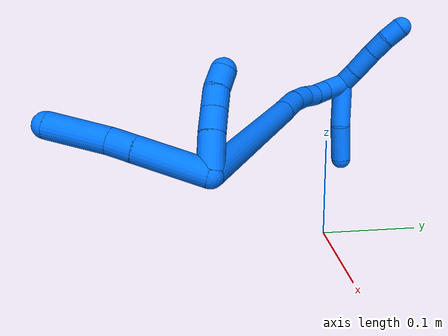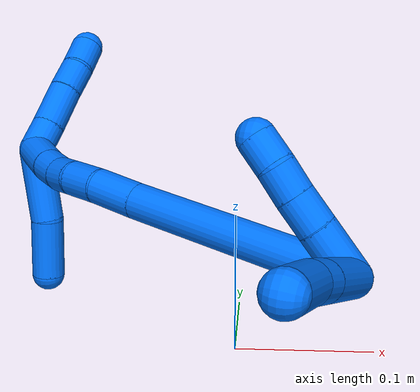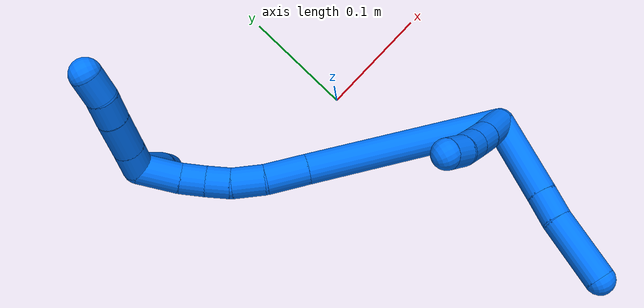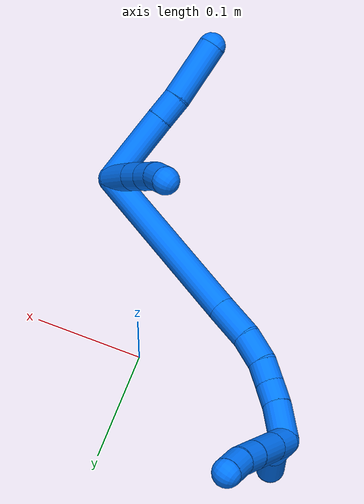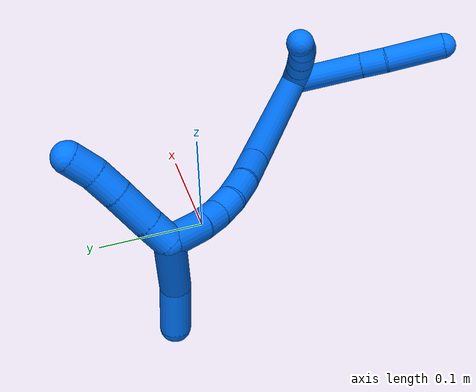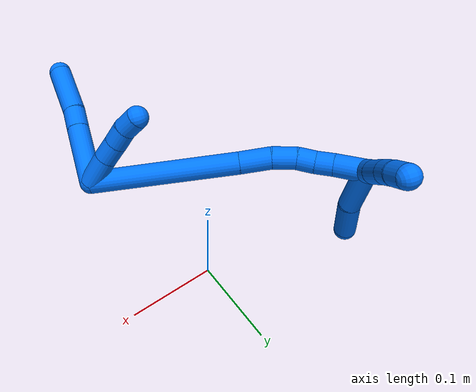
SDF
<sdf version="1.7">
 <world name="default">
  <model name="14">
   <static>0</static>
   <link name="14">
    <collision name="collision-cylinder-e_1_2_8">
     <pose>0.024197 0.024346 0.00153 -1.50804 0.781349 -0.738107</pose>
     <geometry><cylinder><radius>0.0125</radius><length>0.068718</length></cylinder></geometry>
     <surface>
      <friction><ode><mu>1.16</mu><mu2>1.16</mu2><slip1>0</slip1><slip2>0</slip2></ode></friction>
      <contact><ode><kp>1e+06</kp><kd>1</kd><max_vel>0</max_vel><min_depth>0.001</min_depth></ode></contact>
     </surface>
    </collision>
    <visual name="visual-cylinder-e_1_2_8">
     <pose>0.024197 0.024346 0.00153 -1.50804 0.781349 -0.738107</pose>
     <geometry><cylinder><radius>0.0125</radius><length>0.068718</length></cylinder></geometry>
     <material><ambient>0 0.462745 1 1</ambient></material>
    </visual>
    <collision name="collision-cylinder-e_2_8_9">
     <pose>0.056948 0.057179 0.003755 -1.48903 0.787583 -0.731251</pose>
     <geometry><cylinder><radius>0.0125</radius><length>0.024142</length></cylinder></geometry>
     <surface>
      <friction><ode><mu>1.16</mu><mu2>1.16</mu2><slip1>0</slip1><slip2>0</slip2></ode></friction>
      <contact><ode><kp>1e+06</kp><kd>1</kd><max_vel>0</max_vel><min_depth>0.001</min_depth></ode></contact>
     </surface>
    </collision>
    <visual name="visual-cylinder-e_2_8_9">
     <pose>0.056948 0.057179 0.003755 -1.48903 0.787583 -0.731251</pose>
     <geometry><cylinder><radius>0.0125</radius><length>0.024142</length></cylinder></geometry>
     <material><ambient>0 0.462745 1 1</ambient></material>
    </visual>
    <collision name="collision-cylinder-e_3_9_6">
     <pose>0.086258 0.085244 0.002968 -1.64639 0.813232 -0.869632</pose>
     <geometry><cylinder><radius>0.0125</radius><length>0.05714</length></cylinder></geometry>
     <surface>
      <friction><ode><mu>1.16</mu><mu2>1.16</mu2><slip1>0</slip1><slip2>0</slip2></ode></friction>
      <contact><ode><kp>1e+06</kp><kd>1</kd><max_vel>0</max_vel><min_depth>0.001</min_depth></ode></contact>
     </surface>
    </collision>
    <visual name="visual-cylinder-e_3_9_6">
     <pose>0.086258 0.085244 0.002968 -1.64639 0.813232 -0.869632</pose>
     <geometry><cylinder><radius>0.0125</radius><length>0.05714</length></cylinder></geometry>
     <material><ambient>0 0.462745 1 1</ambient></material>
    </visual>
    <collision name="collision-cylinder-e_1_2_10">
     <pose>-0.005134 0.012626 0.01193 -0.813745 -0.2874 0.124544</pose>
     <geometry><cylinder><radius>0.0125</radius><length>0.036227</length></cylinder></geometry>
     <surface>
      <friction><ode><mu>1.16</mu><mu2>1.16</mu2><slip1>0</slip1><slip2>0</slip2></ode></friction>
      <contact><ode><kp>1e+06</kp><kd>1</kd><max_vel>0</max_vel><min_depth>0.001</min_depth></ode></contact>
     </surface>
    </collision>
    <visual name="visual-cylinder-e_1_2_10">
     <pose>-0.005134 0.012626 0.01193 -0.813745 -0.2874 0.124544</pose>
     <geometry><cylinder><radius>0.0125</radius><length>0.036227</length></cylinder></geometry>
     <material><ambient>0 0.462745 1 1</ambient></material>
    </visual>
    <collision name="collision-cylinder-e_2_10_11">
     <pose>-0.013981 0.032678 0.031513 -0.770275 -0.334985 0.136867</pose>
     <geometry><cylinder><radius>0.0125</radius><length>0.022584</length></cylinder></geometry>
     <surface>
      <friction><ode><mu>1.16</mu><mu2>1.16</mu2><slip1>0</slip1><slip2>0</slip2></ode></friction>
      <contact><ode><kp>1e+06</kp><kd>1</kd><max_vel>0</max_vel><min_depth>0.001</min_depth></ode></contact>
     </surface>
    </collision>
    <visual name="visual-cylinder-e_2_10_11">
     <pose>-0.013981 0.032678 0.031513 -0.770275 -0.334985 0.136867</pose>
     <geometry><cylinder><radius>0.0125</radius><length>0.022584</length></cylinder></geometry>
     <material><ambient>0 0.462745 1 1</ambient></material>
    </visual>
    <collision name="collision-cylinder-e_3_11_12">
     <pose>-0.021449 0.04707 0.045807 -0.809416 -0.372066 0.160892</pose>
     <geometry><cylinder><radius>0.0125</radius><length>0.020662</length></cylinder></geometry>
     <surface>
      <friction><ode><mu>1.16</mu><mu2>1.16</mu2><slip1>0</slip1><slip2>0</slip2></ode></friction>
      <contact><ode><kp>1e+06</kp><kd>1</kd><max_vel>0</max_vel><min_depth>0.001</min_depth></ode></contact>
     </surface>
    </collision>
    <visual name="visual-cylinder-e_3_11_12">
     <pose>-0.021449 0.04707 0.045807 -0.809416 -0.372066 0.160892</pose>
     <geometry><cylinder><radius>0.0125</radius><length>0.020662</length></cylinder></geometry>
     <material><ambient>0 0.462745 1 1</ambient></material>
    </visual>
    <collision name="collision-cylinder-e_4_12_5">
     <pose>-0.030131 0.059224 0.059807 -0.61393 -0.500643 0.161742</pose>
     <geometry><cylinder><radius>0.0125</radius><length>0.020527</length></cylinder></geometry>
     <surface>
      <friction><ode><mu>1.16</mu><mu2>1.16</mu2><slip1>0</slip1><slip2>0</slip2></ode></friction>
      <contact><ode><kp>1e+06</kp><kd>1</kd><max_vel>0</max_vel><min_depth>0.001</min_depth></ode></contact>
     </surface>
    </collision>
    <visual name="visual-cylinder-e_4_12_5">
     <pose>-0.030131 0.059224 0.059807 -0.61393 -0.500643 0.161742</pose>
     <geometry><cylinder><radius>0.0125</radius><length>0.020527</length></cylinder></geometry>
     <material><ambient>0 0.462745 1 1</ambient></material>
    </visual>
    <collision name="collision-cylinder-e_1_2_13">
     <pose>-0.019819 -0.007464 0.079427 0.093703 -0.243506 -0.011474</pose>
     <geometry><cylinder><radius>0.0125</radius><length>0.164404</length></cylinder></geometry>
     <surface>
      <friction><ode><mu>1.16</mu><mu2>1.16</mu2><slip1>0</slip1><slip2>0</slip2></ode></friction>
      <contact><ode><kp>1e+06</kp><kd>1</kd><max_vel>0</max_vel><min_depth>0.001</min_depth></ode></contact>
     </surface>
    </collision>
    <visual name="visual-cylinder-e_1_2_13">
     <pose>-0.019819 -0.007464 0.079427 0.093703 -0.243506 -0.011474</pose>
     <geometry><cylinder><radius>0.0125</radius><length>0.164404</length></cylinder></geometry>
     <material><ambient>0 0.462745 1 1</ambient></material>
    </visual>
    <collision name="collision-cylinder-e_2_13_14">
     <pose>-0.043941 -0.015962 0.175663 0.061399 -0.250122 -0.007721</pose>
     <geometry><cylinder><radius>0.0125</radius><length>0.034764</length></cylinder></geometry>
     <surface>
      <friction><ode><mu>1.16</mu><mu2>1.16</mu2><slip1>0</slip1><slip2>0</slip2></ode></friction>
      <contact><ode><kp>1e+06</kp><kd>1</kd><max_vel>0</max_vel><min_depth>0.001</min_depth></ode></contact>
     </surface>
    </collision>
    <visual name="visual-cylinder-e_2_13_14">
     <pose>-0.043941 -0.015962 0.175663 0.061399 -0.250122 -0.007721</pose>
     <geometry><cylinder><radius>0.0125</radius><length>0.034764</length></cylinder></geometry>
     <material><ambient>0 0.462745 1 1</ambient></material>
    </visual>
    <collision name="collision-cylinder-e_3_14_15">
     <pose>-0.052363 -0.019852 0.204815 0.227408 -0.314389 -0.036197</pose>
     <geometry><cylinder><radius>0.0125</radius><length>0.026643</length></cylinder></geometry>
     <surface>
      <friction><ode><mu>1.16</mu><mu2>1.16</mu2><slip1>0</slip1><slip2>0</slip2></ode></friction>
      <contact><ode><kp>1e+06</kp><kd>1</kd><max_vel>0</max_vel><min_depth>0.001</min_depth></ode></contact>
     </surface>
    </collision>
    <visual name="visual-cylinder-e_3_14_15">
     <pose>-0.052363 -0.019852 0.204815 0.227408 -0.314389 -0.036197</pose>
     <geometry><cylinder><radius>0.0125</radius><length>0.026643</length></cylinder></geometry>
     <material><ambient>0 0.462745 1 1</ambient></material>
    </visual>
    <collision name="collision-cylinder-e_4_15_16">
     <pose>-0.060774 -0.026471 0.22556 0.421064 -0.436191 -0.094649</pose>
     <geometry><cylinder><radius>0.0125</radius><length>0.020316</length></cylinder></geometry>
     <surface>
      <friction><ode><mu>1.16</mu><mu2>1.16</mu2><slip1>0</slip1><slip2>0</slip2></ode></friction>
      <contact><ode><kp>1e+06</kp><kd>1</kd><max_vel>0</max_vel><min_depth>0.001</min_depth></ode></contact>
     </surface>
    </collision>
    <visual name="visual-cylinder-e_4_15_16">
     <pose>-0.060774 -0.026471 0.22556 0.421064 -0.436191 -0.094649</pose>
     <geometry><cylinder><radius>0.0125</radius><length>0.020316</length></cylinder></geometry>
     <material><ambient>0 0.462745 1 1</ambient></material>
    </visual>
    <collision name="collision-cylinder-e_5_16_17">
     <pose>-0.070473 -0.032671 0.242347 0.282815 -0.554483 -0.080977</pose>
     <geometry><cylinder><radius>0.0125</radius><length>0.02054</length></cylinder></geometry>
     <surface>
      <friction><ode><mu>1.16</mu><mu2>1.16</mu2><slip1>0</slip1><slip2>0</slip2></ode></friction>
      <contact><ode><kp>1e+06</kp><kd>1</kd><max_vel>0</max_vel><min_depth>0.001</min_depth></ode></contact>
     </surface>
    </collision>
    <visual name="visual-cylinder-e_5_16_17">
     <pose>-0.070473 -0.032671 0.242347 0.282815 -0.554483 -0.080977</pose>
     <geometry><cylinder><radius>0.0125</radius><length>0.02054</length></cylinder></geometry>
     <material><ambient>0 0.462745 1 1</ambient></material>
    </visual>
    <collision name="collision-cylinder-e_6_17_1">
     <pose>-0.086376 -0.038947 0.263096 0.301125 -0.681191 -0.107431</pose>
     <geometry><cylinder><radius>0.0125</radius><length>0.033333</length></cylinder></geometry>
     <surface>
      <friction><ode><mu>1.16</mu><mu2>1.16</mu2><slip1>0</slip1><slip2>0</slip2></ode></friction>
      <contact><ode><kp>1e+06</kp><kd>1</kd><max_vel>0</max_vel><min_depth>0.001</min_depth></ode></contact>
     </surface>
    </collision>
    <visual name="visual-cylinder-e_6_17_1">
     <pose>-0.086376 -0.038947 0.263096 0.301125 -0.681191 -0.107431</pose>
     <geometry><cylinder><radius>0.0125</radius><length>0.033333</length></cylinder></geometry>
     <material><ambient>0 0.462745 1 1</ambient></material>
    </visual>
    <collision name="collision-cylinder-e_1_1_18">
     <pose>-0.107325 -0.03937 0.274766 -1.77138 -1.24881 1.44537</pose>
     <geometry><cylinder><radius>0.0125</radius><length>0.02204</length></cylinder></geometry>
     <surface>
      <friction><ode><mu>1.16</mu><mu2>1.16</mu2><slip1>0</slip1><slip2>0</slip2></ode></friction>
      <contact><ode><kp>1e+06</kp><kd>1</kd><max_vel>0</max_vel><min_depth>0.001</min_depth></ode></contact>
     </surface>
    </collision>
    <visual name="visual-cylinder-e_1_1_18">
     <pose>-0.107325 -0.03937 0.274766 -1.77138 -1.24881 1.44537</pose>
     <geometry><cylinder><radius>0.0125</radius><length>0.02204</length></cylinder></geometry>
     <material><ambient>0 0.462745 1 1</ambient></material>
    </visual>
    <collision name="collision-cylinder-e_2_18_19">
     <pose>-0.133274 -0.030151 0.273241 -1.71289 -1.20922 1.34558</pose>
     <geometry><cylinder><radius>0.0125</radius><length>0.033135</length></cylinder></geometry>
     <surface>
      <friction><ode><mu>1.16</mu><mu2>1.16</mu2><slip1>0</slip1><slip2>0</slip2></ode></friction>
      <contact><ode><kp>1e+06</kp><kd>1</kd><max_vel>0</max_vel><min_depth>0.001</min_depth></ode></contact>
     </surface>
    </collision>
    <visual name="visual-cylinder-e_2_18_19">
     <pose>-0.133274 -0.030151 0.273241 -1.71289 -1.20922 1.34558</pose>
     <geometry><cylinder><radius>0.0125</radius><length>0.033135</length></cylinder></geometry>
     <material><ambient>0 0.462745 1 1</ambient></material>
    </visual>
    <collision name="collision-cylinder-e_3_19_20">
     <pose>-0.159447 -0.020877 0.27159 -1.80288 -1.24826 1.47685</pose>
     <geometry><cylinder><radius>0.0125</radius><length>0.022514</length></cylinder></geometry>
     <surface>
      <friction><ode><mu>1.16</mu><mu2>1.16</mu2><slip1>0</slip1><slip2>0</slip2></ode></friction>
      <contact><ode><kp>1e+06</kp><kd>1</kd><max_vel>0</max_vel><min_depth>0.001</min_depth></ode></contact>
     </surface>
    </collision>
    <visual name="visual-cylinder-e_3_19_20">
     <pose>-0.159447 -0.020877 0.27159 -1.80288 -1.24826 1.47685</pose>
     <geometry><cylinder><radius>0.0125</radius><length>0.022514</length></cylinder></geometry>
     <material><ambient>0 0.462745 1 1</ambient></material>
    </visual>
    <collision name="collision-cylinder-e_4_20_4">
     <pose>-0.181059 -0.015299 0.271433 -1.26529 -1.37161 1.08078</pose>
     <geometry><cylinder><radius>0.0125</radius><length>0.022311</length></cylinder></geometry>
     <surface>
      <friction><ode><mu>1.16</mu><mu2>1.16</mu2><slip1>0</slip1><slip2>0</slip2></ode></friction>
      <contact><ode><kp>1e+06</kp><kd>1</kd><max_vel>0</max_vel><min_depth>0.001</min_depth></ode></contact>
     </surface>
    </collision>
    <visual name="visual-cylinder-e_4_20_4">
     <pose>-0.181059 -0.015299 0.271433 -1.26529 -1.37161 1.08078</pose>
     <geometry><cylinder><radius>0.0125</radius><length>0.022311</length></cylinder></geometry>
     <material><ambient>0 0.462745 1 1</ambient></material>
    </visual>
    <collision name="collision-cylinder-e_1_1_21">
     <pose>-0.083386 -0.065647 0.268696 1.85851 0.514777 0.677635</pose>
     <geometry><cylinder><radius>0.0125</radius><length>0.054779</length></cylinder></geometry>
     <surface>
      <friction><ode><mu>1.16</mu><mu2>1.16</mu2><slip1>0</slip1><slip2>0</slip2></ode></friction>
      <contact><ode><kp>1e+06</kp><kd>1</kd><max_vel>0</max_vel><min_depth>0.001</min_depth></ode></contact>
     </surface>
    </collision>
    <visual name="visual-cylinder-e_1_1_21">
     <pose>-0.083386 -0.065647 0.268696 1.85851 0.514777 0.677635</pose>
     <geometry><cylinder><radius>0.0125</radius><length>0.054779</length></cylinder></geometry>
     <material><ambient>0 0.462745 1 1</ambient></material>
    </visual>
    <collision name="collision-cylinder-e_2_21_3">
     <pose>-0.059673 -0.108632 0.260672 1.63325 0.469426 0.498495</pose>
     <geometry><cylinder><radius>0.0125</radius><length>0.045221</length></cylinder></geometry>
     <surface>
      <friction><ode><mu>1.16</mu><mu2>1.16</mu2><slip1>0</slip1><slip2>0</slip2></ode></friction>
      <contact><ode><kp>1e+06</kp><kd>1</kd><max_vel>0</max_vel><min_depth>0.001</min_depth></ode></contact>
     </surface>
    </collision>
    <visual name="visual-cylinder-e_2_21_3">
     <pose>-0.059673 -0.108632 0.260672 1.63325 0.469426 0.498495</pose>
     <geometry><cylinder><radius>0.0125</radius><length>0.045221</length></cylinder></geometry>
     <material><ambient>0 0.462745 1 1</ambient></material>
    </visual>
    <collision name="collision-sphere-3">
     <pose>-0.049444 -0.128758 0.259414 0 -0 0</pose>
     <geometry><sphere><radius>0.0125</radius></sphere></geometry>
     <surface>
      <friction><ode><mu>1.16</mu><mu2>1.16</mu2><slip1>0</slip1><slip2>0</slip2></ode></friction>
      <contact><ode><kp>1e+06</kp><kd>1</kd><max_vel>0</max_vel><min_depth>0.001</min_depth></ode></contact>
     </surface>
    </collision>
    <visual name="visual-sphere-3">
     <pose>-0.049444 -0.128758 0.259414 0 -0 0</pose>
     <geometry><sphere><radius>0.0125</radius></sphere></geometry>
     <material><ambient>0 0.462745 1 1</ambient></material>
    </visual>
    <collision name="collision-sphere-21">
     <pose>-0.069901 -0.088507 0.261931 0 -0 0</pose>
     <geometry><sphere><radius>0.0125</radius></sphere></geometry>
     <surface>
      <friction><ode><mu>1.16</mu><mu2>1.16</mu2><slip1>0</slip1><slip2>0</slip2></ode></friction>
      <contact><ode><kp>1e+06</kp><kd>1</kd><max_vel>0</max_vel><min_depth>0.001</min_depth></ode></contact>
     </surface>
    </collision>
    <visual name="visual-sphere-21">
     <pose>-0.069901 -0.088507 0.261931 0 -0 0</pose>
     <geometry><sphere><radius>0.0125</radius></sphere></geometry>
     <material><ambient>0 0.462745 1 1</ambient></material>
    </visual>
    <collision name="collision-sphere-4">
     <pose>-0.191994 -0.013194 0.272097 0 -0 0</pose>
     <geometry><sphere><radius>0.0125</radius></sphere></geometry>
     <surface>
      <friction><ode><mu>1.16</mu><mu2>1.16</mu2><slip1>0</slip1><slip2>0</slip2></ode></friction>
      <contact><ode><kp>1e+06</kp><kd>1</kd><max_vel>0</max_vel><min_depth>0.001</min_depth></ode></contact>
     </surface>
    </collision>
    <visual name="visual-sphere-4">
     <pose>-0.191994 -0.013194 0.272097 0 -0 0</pose>
     <geometry><sphere><radius>0.0125</radius></sphere></geometry>
     <material><ambient>0 0.462745 1 1</ambient></material>
    </visual>
    <collision name="collision-sphere-20">
     <pose>-0.170124 -0.017404 0.270769 0 -0 0</pose>
     <geometry><sphere><radius>0.0125</radius></sphere></geometry>
     <surface>
      <friction><ode><mu>1.16</mu><mu2>1.16</mu2><slip1>0</slip1><slip2>0</slip2></ode></friction>
      <contact><ode><kp>1e+06</kp><kd>1</kd><max_vel>0</max_vel><min_depth>0.001</min_depth></ode></contact>
     </surface>
    </collision>
    <visual name="visual-sphere-20">
     <pose>-0.170124 -0.017404 0.270769 0 -0 0</pose>
     <geometry><sphere><radius>0.0125</radius></sphere></geometry>
     <material><ambient>0 0.462745 1 1</ambient></material>
    </visual>
    <collision name="collision-sphere-11">
     <pose>-0.017693 0.040104 0.039167 0 -0 0</pose>
     <geometry><sphere><radius>0.0125</radius></sphere></geometry>
     <surface>
      <friction><ode><mu>1.16</mu><mu2>1.16</mu2><slip1>0</slip1><slip2>0</slip2></ode></friction>
      <contact><ode><kp>1e+06</kp><kd>1</kd><max_vel>0</max_vel><min_depth>0.001</min_depth></ode></contact>
     </surface>
    </collision>
    <visual name="visual-sphere-11">
     <pose>-0.017693 0.040104 0.039167 0 -0 0</pose>
     <geometry><sphere><radius>0.0125</radius></sphere></geometry>
     <material><ambient>0 0.462745 1 1</ambient></material>
    </visual>
    <collision name="collision-sphere-10">
     <pose>-0.010269 0.025252 0.023859 0 -0 0</pose>
     <geometry><sphere><radius>0.0125</radius></sphere></geometry>
     <surface>
      <friction><ode><mu>1.16</mu><mu2>1.16</mu2><slip1>0</slip1><slip2>0</slip2></ode></friction>
      <contact><ode><kp>1e+06</kp><kd>1</kd><max_vel>0</max_vel><min_depth>0.001</min_depth></ode></contact>
     </surface>
    </collision>
    <visual name="visual-sphere-10">
     <pose>-0.010269 0.025252 0.023859 0 -0 0</pose>
     <geometry><sphere><radius>0.0125</radius></sphere></geometry>
     <material><ambient>0 0.462745 1 1</ambient></material>
    </visual>
    <collision name="collision-sphere-6">
     <pose>0.107015 0.10482 0.001486 0 -0 0</pose>
     <geometry><sphere><radius>0.0125</radius></sphere></geometry>
     <surface>
      <friction><ode><mu>1.16</mu><mu2>1.16</mu2><slip1>0</slip1><slip2>0</slip2></ode></friction>
      <contact><ode><kp>1e+06</kp><kd>1</kd><max_vel>0</max_vel><min_depth>0.001</min_depth></ode></contact>
     </surface>
    </collision>
    <visual name="visual-sphere-6">
     <pose>0.107015 0.10482 0.001486 0 -0 0</pose>
     <geometry><sphere><radius>0.0125</radius></sphere></geometry>
     <material><ambient>0 0.462745 1 1</ambient></material>
    </visual>
    <collision name="collision-sphere-9">
     <pose>0.065502 0.065668 0.004451 0 -0 0</pose>
     <geometry><sphere><radius>0.0125</radius></sphere></geometry>
     <surface>
      <friction><ode><mu>1.16</mu><mu2>1.16</mu2><slip1>0</slip1><slip2>0</slip2></ode></friction>
      <contact><ode><kp>1e+06</kp><kd>1</kd><max_vel>0</max_vel><min_depth>0.001</min_depth></ode></contact>
     </surface>
    </collision>
    <visual name="visual-sphere-9">
     <pose>0.065502 0.065668 0.004451 0 -0 0</pose>
     <geometry><sphere><radius>0.0125</radius></sphere></geometry>
     <material><ambient>0 0.462745 1 1</ambient></material>
    </visual>
    <collision name="collision-sphere-2">
     <geometry><sphere><radius>0.0125</radius></sphere></geometry>
     <surface>
      <friction><ode><mu>1.16</mu><mu2>1.16</mu2><slip1>0</slip1><slip2>0</slip2></ode></friction>
      <contact><ode><kp>1e+06</kp><kd>1</kd><max_vel>0</max_vel><min_depth>0.001</min_depth></ode></contact>
     </surface>
    </collision>
    <visual name="visual-sphere-2">
     <geometry><sphere><radius>0.0125</radius></sphere></geometry>
     <material><ambient>0 0.462745 1 1</ambient></material>
    </visual>
    <collision name="collision-sphere-19">
     <pose>-0.148771 -0.024349 0.272411 0 -0 0</pose>
     <geometry><sphere><radius>0.0125</radius></sphere></geometry>
     <surface>
      <friction><ode><mu>1.16</mu><mu2>1.16</mu2><slip1>0</slip1><slip2>0</slip2></ode></friction>
      <contact><ode><kp>1e+06</kp><kd>1</kd><max_vel>0</max_vel><min_depth>0.001</min_depth></ode></contact>
     </surface>
    </collision>
    <visual name="visual-sphere-19">
     <pose>-0.148771 -0.024349 0.272411 0 -0 0</pose>
     <geometry><sphere><radius>0.0125</radius></sphere></geometry>
     <material><ambient>0 0.462745 1 1</ambient></material>
    </visual>
    <collision name="collision-sphere-8">
     <pose>0.048394 0.048691 0.00306 0 -0 0</pose>
     <geometry><sphere><radius>0.0125</radius></sphere></geometry>
     <surface>
      <friction><ode><mu>1.16</mu><mu2>1.16</mu2><slip1>0</slip1><slip2>0</slip2></ode></friction>
      <contact><ode><kp>1e+06</kp><kd>1</kd><max_vel>0</max_vel><min_depth>0.001</min_depth></ode></contact>
     </surface>
    </collision>
    <visual name="visual-sphere-8">
     <pose>0.048394 0.048691 0.00306 0 -0 0</pose>
     <geometry><sphere><radius>0.0125</radius></sphere></geometry>
     <material><ambient>0 0.462745 1 1</ambient></material>
    </visual>
    <collision name="collision-sphere-12">
     <pose>-0.025205 0.054037 0.052447 0 -0 0</pose>
     <geometry><sphere><radius>0.0125</radius></sphere></geometry>
     <surface>
      <friction><ode><mu>1.16</mu><mu2>1.16</mu2><slip1>0</slip1><slip2>0</slip2></ode></friction>
      <contact><ode><kp>1e+06</kp><kd>1</kd><max_vel>0</max_vel><min_depth>0.001</min_depth></ode></contact>
     </surface>
    </collision>
    <visual name="visual-sphere-12">
     <pose>-0.025205 0.054037 0.052447 0 -0 0</pose>
     <geometry><sphere><radius>0.0125</radius></sphere></geometry>
     <material><ambient>0 0.462745 1 1</ambient></material>
    </visual>
    <collision name="collision-sphere-5">
     <pose>-0.035058 0.064411 0.067167 0 -0 0</pose>
     <geometry><sphere><radius>0.0125</radius></sphere></geometry>
     <surface>
      <friction><ode><mu>1.16</mu><mu2>1.16</mu2><slip1>0</slip1><slip2>0</slip2></ode></friction>
      <contact><ode><kp>1e+06</kp><kd>1</kd><max_vel>0</max_vel><min_depth>0.001</min_depth></ode></contact>
     </surface>
    </collision>
    <visual name="visual-sphere-5">
     <pose>-0.035058 0.064411 0.067167 0 -0 0</pose>
     <geometry><sphere><radius>0.0125</radius></sphere></geometry>
     <material><ambient>0 0.462745 1 1</ambient></material>
    </visual>
    <collision name="collision-sphere-13">
     <pose>-0.039639 -0.014929 0.158854 0 -0 0</pose>
     <geometry><sphere><radius>0.0125</radius></sphere></geometry>
     <surface>
      <friction><ode><mu>1.16</mu><mu2>1.16</mu2><slip1>0</slip1><slip2>0</slip2></ode></friction>
      <contact><ode><kp>1e+06</kp><kd>1</kd><max_vel>0</max_vel><min_depth>0.001</min_depth></ode></contact>
     </surface>
    </collision>
    <visual name="visual-sphere-13">
     <pose>-0.039639 -0.014929 0.158854 0 -0 0</pose>
     <geometry><sphere><radius>0.0125</radius></sphere></geometry>
     <material><ambient>0 0.462745 1 1</ambient></material>
    </visual>
    <collision name="collision-sphere-14">
     <pose>-0.048244 -0.016995 0.192473 0 -0 0</pose>
     <geometry><sphere><radius>0.0125</radius></sphere></geometry>
     <surface>
      <friction><ode><mu>1.16</mu><mu2>1.16</mu2><slip1>0</slip1><slip2>0</slip2></ode></friction>
      <contact><ode><kp>1e+06</kp><kd>1</kd><max_vel>0</max_vel><min_depth>0.001</min_depth></ode></contact>
     </surface>
    </collision>
    <visual name="visual-sphere-14">
     <pose>-0.048244 -0.016995 0.192473 0 -0 0</pose>
     <geometry><sphere><radius>0.0125</radius></sphere></geometry>
     <material><ambient>0 0.462745 1 1</ambient></material>
    </visual>
    <collision name="collision-sphere-15">
     <pose>-0.056483 -0.022708 0.217157 0 -0 0</pose>
     <geometry><sphere><radius>0.0125</radius></sphere></geometry>
     <surface>
      <friction><ode><mu>1.16</mu><mu2>1.16</mu2><slip1>0</slip1><slip2>0</slip2></ode></friction>
      <contact><ode><kp>1e+06</kp><kd>1</kd><max_vel>0</max_vel><min_depth>0.001</min_depth></ode></contact>
     </surface>
    </collision>
    <visual name="visual-sphere-15">
     <pose>-0.056483 -0.022708 0.217157 0 -0 0</pose>
     <geometry><sphere><radius>0.0125</radius></sphere></geometry>
     <material><ambient>0 0.462745 1 1</ambient></material>
    </visual>
    <collision name="collision-sphere-16">
     <pose>-0.065066 -0.030234 0.233963 0 -0 0</pose>
     <geometry><sphere><radius>0.0125</radius></sphere></geometry>
     <surface>
      <friction><ode><mu>1.16</mu><mu2>1.16</mu2><slip1>0</slip1><slip2>0</slip2></ode></friction>
      <contact><ode><kp>1e+06</kp><kd>1</kd><max_vel>0</max_vel><min_depth>0.001</min_depth></ode></contact>
     </surface>
    </collision>
    <visual name="visual-sphere-16">
     <pose>-0.065066 -0.030234 0.233963 0 -0 0</pose>
     <geometry><sphere><radius>0.0125</radius></sphere></geometry>
     <material><ambient>0 0.462745 1 1</ambient></material>
    </visual>
    <collision name="collision-sphere-17">
     <pose>-0.07588 -0.035107 0.250732 0 -0 0</pose>
     <geometry><sphere><radius>0.0125</radius></sphere></geometry>
     <surface>
      <friction><ode><mu>1.16</mu><mu2>1.16</mu2><slip1>0</slip1><slip2>0</slip2></ode></friction>
      <contact><ode><kp>1e+06</kp><kd>1</kd><max_vel>0</max_vel><min_depth>0.001</min_depth></ode></contact>
     </surface>
    </collision>
    <visual name="visual-sphere-17">
     <pose>-0.07588 -0.035107 0.250732 0 -0 0</pose>
     <geometry><sphere><radius>0.0125</radius></sphere></geometry>
     <material><ambient>0 0.462745 1 1</ambient></material>
    </visual>
    <collision name="collision-sphere-1">
     <pose>-0.096871 -0.042787 0.27546 0 -0 0</pose>
     <geometry><sphere><radius>0.0125</radius></sphere></geometry>
     <surface>
      <friction><ode><mu>1.16</mu><mu2>1.16</mu2><slip1>0</slip1><slip2>0</slip2></ode></friction>
      <contact><ode><kp>1e+06</kp><kd>1</kd><max_vel>0</max_vel><min_depth>0.001</min_depth></ode></contact>
     </surface>
    </collision>
    <visual name="visual-sphere-1">
     <pose>-0.096871 -0.042787 0.27546 0 -0 0</pose>
     <geometry><sphere><radius>0.0125</radius></sphere></geometry>
     <material><ambient>0 0.462745 1 1</ambient></material>
    </visual>
    <collision name="collision-sphere-18">
     <pose>-0.117778 -0.035952 0.274071 0 -0 0</pose>
     <geometry><sphere><radius>0.0125</radius></sphere></geometry>
     <surface>
      <friction><ode><mu>1.16</mu><mu2>1.16</mu2><slip1>0</slip1><slip2>0</slip2></ode></friction>
      <contact><ode><kp>1e+06</kp><kd>1</kd><max_vel>0</max_vel><min_depth>0.001</min_depth></ode></contact>
     </surface>
    </collision>
    <visual name="visual-sphere-18">
     <pose>-0.117778 -0.035952 0.274071 0 -0 0</pose>
     <geometry><sphere><radius>0.0125</radius></sphere></geometry>
     <material><ambient>0 0.462745 1 1</ambient></material>
    </visual>
    <inertial>
     <pose>-0.036022 -0.006262 0.133896 0 -0 0</pose>
     <mass>0.75</mass>
     <inertia>
      <ixx>0.000414</ixx>
      <ixy>0</ixy>
      <ixz>0</ixz>
      <iyy>0.000427</iyy>
      <iyz>0</iyz>
      <izz>0.000102</izz>
     </inertia>
    </inertial>
   </link>
   <pose>0.072679 -0.1195 0.094172 1.45628 0.522176 -1.93317</pose>
  </model>
 </world>
</sdf>
